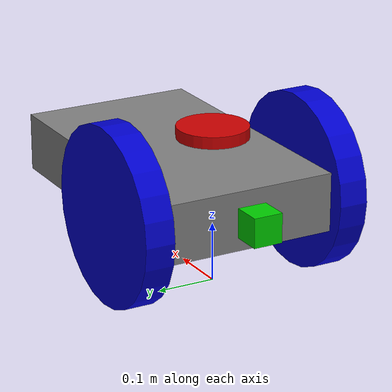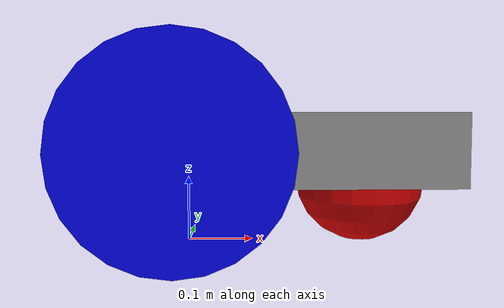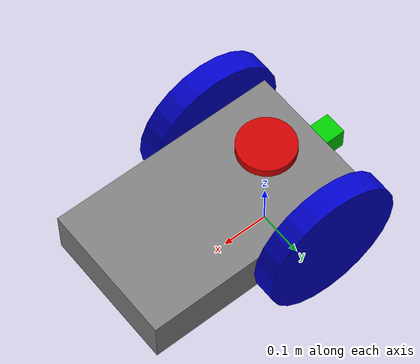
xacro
<?xml version="1.0"?>
<robot name="differential_robot" xmlns:xacro="http://www.ros.org/wiki/xacro">

  <!-- ARQUIVO PRINCIPAL                            -->
  <!-- Importa propriedades e macros, define o robô -->

  <!-- IMPORTAÇÃO DE ARQUIVOS -->
  <!--
    xacro:include importa o conteúdo de outros arquivos .xacro
    $(find package_name) retorna o caminho do pacote ROS
  -->

  <xacro:include filename="$(find rm_description)/urdf/properties.xacro"/>
  <xacro:include filename="$(find rm_description)/urdf/wheels.xacro"/>
  <xacro:include filename="$(find rm_description)/urdf/gazebo_control.xacro"/>
  <xacro:include filename="$(find rm_description)/urdf/sensors.xacro" />
  <xacro:include filename="$(find rm_description)/urdf/inertial_macros.xacro"/>
  <!-- BASE FOOTPRINT       -->
  <link name="base_footprint">
    <inertial>
      <origin xyz="0 0 0"/>
      <mass value="1.0"/>
      <inertia
        ixx="0.1"
        ixy="0.0"
        ixz="0.0"
        iyy="0.1"
        iyz="0.0"
        izz="0.1"/>
    </inertial>
  </link>

  <gazebo reference="base_footprint">
    <gravity>false</gravity>
  </gazebo>
  <!-- BASE LINK            -->
  <link name="base_link">
    <visual>
      <origin xyz="0.13 0 0" rpy="0 0 0"/>
      <geometry>
        <box size="${base_length} ${base_width} ${base_height}"/>
      </geometry>
      <material name="gray"/>
    </visual>
    <collision>
      <origin xyz="0 0 0" rpy="0 0 0"/>
      <geometry>
        <box size="${base_length} ${base_width} ${base_height}"/>
      </geometry>
    </collision>
    <xacro:inertial_box
        mass="${base_mass}"
        x="${base_length}"
        y="${base_width}"
        z="${base_height}">
      <origin xyz="0 0 0"/>
    </xacro:inertial_box>
  </link>

  <joint name="base_joint" type="fixed">
    <parent link="base_footprint"/>
    <child link="base_link"/>
    <origin xyz="0 0 ${0.1 + base_height/2}" rpy="0 0 0"/>
  </joint>

  <!-- Roda Esquerda -->
  <xacro:wheels
  name="left_wheel"
  material="blue"/>

  <joint name="left_wheel_joint" type="continuous">
  <parent link="base_link"/>
  <child link="left_wheel"/>
  <origin xyz="0 ${base_width/2 + 0.05/2} 0"
          rpy="1.5708 0 0"/>
  <axis xyz="0 0 1"/>
  </joint>

  <!-- Roda Direita -->
  <xacro:wheels
  name="right_wheel"
  material="blue"/>

  <joint name="right_wheel_joint" type="continuous">
  <parent link="base_link"/>
  <child link="right_wheel"/>
  <origin xyz="0 -${base_width/2 + 0.05/2} 0" rpy="1.5708 0 0"/>
  <axis xyz="0 0 1"/>
</joint>

  <xacro:sphere_link
  name="caster_ball"
  radius="0.1"
  mass="1"
  material="red"/>

  <joint name="caster_joint" type="fixed">
  <parent link="base_link"/>
  <child link="caster_ball"/>

  <origin xyz="0.27 0 -0.05"
          rpy="0 0 0"/>
</joint>

<!-- CAMERA LINK -->

<link name="camera">
  <visual>
    <origin xyz="0 0 0" rpy="0 0 0"/>
    <geometry>
      <box size="0.05 0.05 0.05"/>
    </geometry>
    <material name="green"/>
  </visual>

  <collision>
    <origin xyz="0 0 0" rpy="0 0 0"/>
    <geometry>
      <box size="0.05 0.05 0.05"/>
    </geometry>
  </collision>

  <inertial>
    <origin xyz="0 0 0"/>
    <mass value="0.1"/>
    <inertia
      ixx="0.0001"
      ixy="0.0"
      ixz="0.0"
      iyy="0.0001"
      iyz="0.0"
      izz="0.0001"/>
  </inertial>
</link>

<!-- CAMERA JOINT -->

<joint name="camera_joint" type="fixed">
  <parent link="base_link"/>
  <child link="camera"/>

  <!-- frente do robô -->
  <origin xyz="-0.15 0 0" rpy="0 0 3.14159"/>
</joint>

<!-- IMU LINK -->

<link name="IMU">
</link>

<!-- IMU JOINT -->

<joint name="imu_joint" type="fixed">
  <parent link="base_link"/>
  <child link="IMU"/>

  <!-- frente do robô -->
  <origin xyz="0 0 0" rpy="0 0 0"/>
</joint>

<!-- LIDAR LINK -->

<link name="lidar">
  <visual>
    <origin xyz="0 0 0" rpy="0 0 0"/>
    <geometry>
      <!-- cilindro achatado -->
      <cylinder radius="0.06" length="0.02"/>
    </geometry>
    <material name="red"/>
  </visual>

  <collision>
    <origin xyz="0 0 0" rpy="0 0 0"/>
    <geometry>
      <cylinder radius="0.06" length="0.02"/>
    </geometry>
  </collision>

  <inertial>
    <origin xyz="0 0 0"/>
    <mass value="0.1"/>
    <inertia
      ixx="0.0001"
      ixy="0"
      ixz="0"
      iyy="0.0001"
      iyz="0"
      izz="0.0001"/>
  </inertial>
</link>

<!-- LIDAR JOINT -->

<joint name="lidar_joint" type="fixed">
  <parent link="base_link"/>
  <child link="lidar"/>

  <!-- em cima do robô -->
  <origin xyz="0 0 ${base_height/2 + 0.06}" rpy="0 0 0"/>
</joint>

</robot>

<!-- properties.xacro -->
<robot xmlns:xacro="http://www.ros.org/wiki/xacro">

  <!-- ARQUIVO DE PROPRIEDADES                      -->
  <!-- Contém todas as constantes e dimensões       -->

  <!-- Propriedades da Base -->
  <xacro:property name="base_height" value="0.1"/>
  <xacro:property name="base_mass" value="2.0"/>
  <xacro:property name="base_length" value="0.5"/>
  <xacro:property name="base_width" value="0.3"/>

  <!-- MATERIAIS (cores)                            -->
  <material name="gray">
    <color rgba="0.5 0.5 0.5 1"/>
  </material>

  <material name="blue">
    <color rgba="0 0 0.8 1"/>
  </material>

  <material name="red">
    <color rgba="0.8 0 0 1"/>
  </material>

  <material name="green">
    <color rgba="0 0.8 0 1"/>
  </material>

</robot>

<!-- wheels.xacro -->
<robot xmlns:xacro="http://www.ros.org/wiki/xacro">

  <xacro:include filename="$(find rm_description)/urdf/inertial_macros.xacro"/>
  <!-- ARQUIVO DE MACROS                            -->
  <!-- Contém componentes reutilizáveis             -->

  <xacro:property name="wheel_radius" value="0.15"/>
  <xacro:property name="wheel_length" value="0.05"/>
  <xacro:property name="wheel_mass" value="0.5"/>

  <!-- MACRO: LINK CILÍNDRICO -->
  <xacro:macro name="wheels" params="name material">
    <link name="${name}">
      <visual>
        <!-- Desloca para que a BASE do cilindro fique na origem -->
        <origin xyz="0 0 0" rpy="0 0 0"/>
        <geometry>
          <cylinder radius="${wheel_radius}" length="${wheel_length}"/>
        </geometry>
        <material name="${material}"/>
      </visual>

      <collision>
        <origin xyz="0 0 0" rpy="0 0 0"/>
        <geometry>
          <cylinder radius="${wheel_radius}" length="${wheel_length}"/>
        </geometry>
      </collision>

      <xacro:inertial_cylinder
        mass="${wheel_mass}"
        length="${wheel_length}"
        radius="${wheel_radius}">
      <origin xyz="0 0 0"/>
    </xacro:inertial_cylinder>
    </link>
  </xacro:macro>

  <!-- MACRO: LINK ESFÉRICO -->
  <xacro:macro name="sphere_link" params="name radius mass material">
    <link name="${name}">
      <visual>
        <origin xyz="0 0 0" rpy="0 0 0"/>
        <geometry>
          <sphere radius="${radius}"/>
        </geometry>
        <material name="${material}"/>
      </visual>

      <collision>
        <origin xyz="0 0 0" rpy="0 0 0"/>
        <geometry>
          <sphere radius="${radius}"/>
        </geometry>
      </collision>

      <xacro:inertial_sphere
        mass="${mass}"
        radius="${radius}">
        <origin xyz="0 0 0"/>
      </xacro:inertial_sphere>

    </link>
  </xacro:macro>

</robot>
